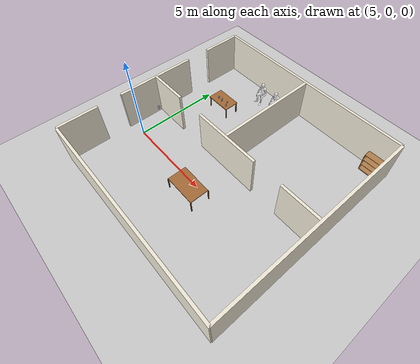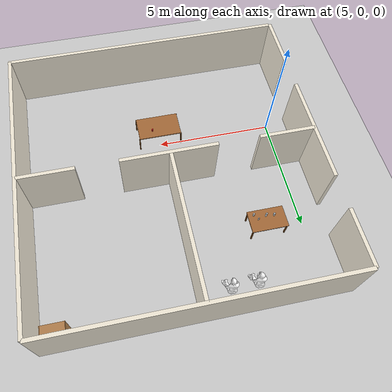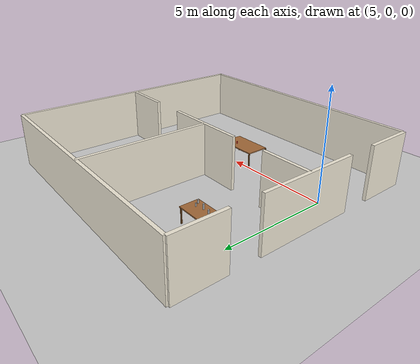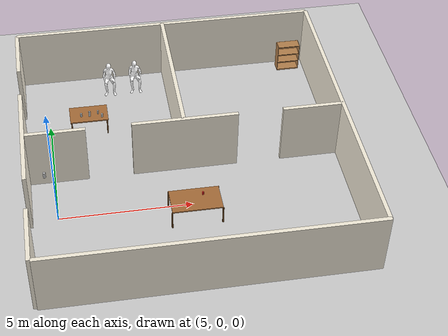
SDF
<sdf version="1.7">
 <world name="house">
  <plugin name="grasp_assist" filename="libgrasp_assist.so">
   <robot>tiago</robot>
   <finger_joint>gripper_left_finger_joint</finger_joint>
   <finger_joint>gripper_right_finger_joint</finger_joint>
   <max_mass>2.0</max_mass>
  </plugin>
  <light name="sun" type="directional">
   <pose>0 0 10 0 -0 0</pose>
   <diffuse>0.8 0.8 0.8 1</diffuse>
   <specular>0.2 0.2 0.2 1</specular>
   <attenuation>
    <range>1000</range>
    <constant>0.9</constant>
    <linear>0.01</linear>
    <quadratic>0.001</quadratic>
   </attenuation>
   <direction>-0.5 0.1 -0.9</direction>
   <spot><inner_angle>0</inner_angle><outer_angle>0</outer_angle><falloff>0</falloff></spot>
  </light>
  <gravity>0 0 -9.81</gravity>
  <physics type="ode">
   <max_step_size>0.001</max_step_size>
   <real_time_factor>1</real_time_factor>
   <real_time_update_rate>1000</real_time_update_rate>
  </physics>
  <model name="ground_plane">
   <static>1</static>
   <link name="link">
    <collision name="collision">
     <geometry><plane><normal>0 0 1</normal><size>100 100</size></plane></geometry>
     <surface><friction><ode><mu>100</mu><mu2>50</mu2></ode></friction></surface>
    </collision>
    <visual name="visual">
     <cast_shadows>0</cast_shadows>
     <geometry><plane><normal>0 0 1</normal><size>100 100</size></plane></geometry>
     <material>
      <script><uri>file://media/materials/scripts/gazebo.material</uri><name>Gazebo/Grey</name></script>
     </material>
    </visual>
   </link>
  </model>
  <model name="wall_north">
   <static>1</static>
   <pose>10 8 1.25 0 -0 0</pose>
   <link name="link">
    <collision name="c"><geometry><box><size>12 0.15 2.5</size></box></geometry></collision>
    <visual name="v">
     <geometry><box><size>12 0.15 2.5</size></box></geometry>
     <material><ambient>0.95 0.92 0.85 1</ambient><diffuse>0.95 0.92 0.85 1</diffuse></material>
    </visual>
   </link>
  </model>
  <model name="wall_south">
   <static>1</static>
   <pose>10.0572 -3.98547 1.25 0 -0 0</pose>
   <link name="link">
    <collision name="c"><geometry><box><size>12 0.15 2.5</size></box></geometry></collision>
    <visual name="v">
     <geometry><box><size>12 0.15 2.5</size></box></geometry>
     <material><ambient>0.95 0.92 0.85 1</ambient><diffuse>0.95 0.92 0.85 1</diffuse></material>
    </visual>
   </link>
  </model>
  <model name="wall_east">
   <static>1</static>
   <pose>16 2 1.25 0 -0 0</pose>
   <link name="link">
    <collision name="c"><geometry><box><size>0.15 12 2.5</size></box></geometry></collision>
    <visual name="v">
     <geometry><box><size>0.15 12 2.5</size></box></geometry>
     <material><ambient>0.95 0.92 0.85 1</ambient><diffuse>0.95 0.92 0.85 1</diffuse></material>
    </visual>
   </link>
  </model>
  <model name="wall_west_s">
   <static>1</static>
   <pose>4 -2.85 1.25 0 -0 0</pose>
   <link name="link">
    <collision name="c"><geometry><box><size>0.15 2.3 2.5</size></box></geometry></collision>
    <visual name="v">
     <geometry><box><size>0.15 2.3 2.5</size></box></geometry>
     <material><ambient>0.95 0.92 0.85 1</ambient><diffuse>0.95 0.92 0.85 1</diffuse></material>
    </visual>
   </link>
  </model>
  <model name="wall_west_m">
   <static>1</static>
   <pose>4 2 1.25 0 -0 0</pose>
   <link name="link">
    <collision name="c"><geometry><box><size>0.15 4.6 2.5</size></box></geometry></collision>
    <visual name="v">
     <geometry><box><size>0.15 4.6 2.5</size></box></geometry>
     <material><ambient>0.95 0.92 0.85 1</ambient><diffuse>0.95 0.92 0.85 1</diffuse></material>
    </visual>
   </link>
  </model>
  <model name="wall_west_n">
   <static>1</static>
   <pose>4 6.85 1.25 0 -0 0</pose>
   <link name="link">
    <collision name="c"><geometry><box><size>0.15 2.3 2.5</size></box></geometry></collision>
    <visual name="v">
     <geometry><box><size>0.15 2.3 2.5</size></box></geometry>
     <material><ambient>0.95 0.92 0.85 1</ambient><diffuse>0.95 0.92 0.85 1</diffuse></material>
    </visual>
   </link>
  </model>
  <model name="wall_h_1">
   <static>1</static>
   <pose>5.15 2 1.25 0 -0 0</pose>
   <link name="link">
    <collision name="c"><geometry><box><size>2.3 0.15 2.5</size></box></geometry></collision>
    <visual name="v">
     <geometry><box><size>2.3 0.15 2.5</size></box></geometry>
     <material><ambient>0.95 0.92 0.85 1</ambient><diffuse>0.95 0.92 0.85 1</diffuse></material>
    </visual>
   </link>
  </model>
  <model name="wall_h_2">
   <static>1</static>
   <pose>10 2 1.25 0 -0 0</pose>
   <link name="link">
    <collision name="c"><geometry><box><size>4 0.15 2.5</size></box></geometry></collision>
    <visual name="v">
     <geometry><box><size>4 0.15 2.5</size></box></geometry>
     <material><ambient>0.95 0.92 0.85 1</ambient><diffuse>0.95 0.92 0.85 1</diffuse></material>
    </visual>
   </link>
  </model>
  <model name="wall_h_3">
   <static>1</static>
   <pose>14.85 2 1.25 0 -0 0</pose>
   <link name="link">
    <collision name="c"><geometry><box><size>2.3 0.15 2.5</size></box></geometry></collision>
    <visual name="v">
     <geometry><box><size>2.3 0.15 2.5</size></box></geometry>
     <material><ambient>0.95 0.92 0.85 1</ambient><diffuse>0.95 0.92 0.85 1</diffuse></material>
    </visual>
   </link>
  </model>
  <model name="wall_v">
   <static>1</static>
   <pose>9.94348 5.02498 1.25 0 -0 0</pose>
   <link name="link">
    <collision name="c"><geometry><box><size>0.15 6 2.5</size></box></geometry></collision>
    <visual name="v">
     <geometry><box><size>0.15 6 2.5</size></box></geometry>
     <material><ambient>0.95 0.92 0.85 1</ambient><diffuse>0.95 0.92 0.85 1</diffuse></material>
    </visual>
   </link>
  </model>
  <model name="coffee_table">
   <static>1</static>
   <pose>10 -0.5 0 0 -0 0</pose>
   <link name="link">
    <visual name="top">
     <pose>0 0 0.76 0 -0 0</pose>
     <geometry><box><size>1.86 1.08 0.05</size></box></geometry>
     <material><ambient>0.55 0.35 0.18 1</ambient><diffuse>0.65 0.42 0.22 1</diffuse></material>
    </visual>
    <collision name="top_c">
     <pose>0 0 0.76 0 -0 0</pose>
     <geometry><box><size>1.86 1.08 0.05</size></box></geometry>
    </collision>
    <visual name="leg1">
     <pose>-0.93 -0.54 0.375 0 -0 0</pose>
     <geometry><box><size>0.05 0.05 0.75</size></box></geometry>
     <material><ambient>0.4 0.25 0.1 1</ambient><diffuse>0.4 0.25 0.1 1</diffuse></material>
    </visual>
    <collision name="leg1_c">
     <pose>-0.93 -0.54 0.375 0 -0 0</pose>
     <geometry><box><size>0.05 0.05 0.75</size></box></geometry>
    </collision>
    <visual name="leg2">
     <pose>0.93 -0.54 0.375 0 -0 0</pose>
     <geometry><box><size>0.05 0.05 0.75</size></box></geometry>
     <material><ambient>0.4 0.25 0.1 1</ambient><diffuse>0.4 0.25 0.1 1</diffuse></material>
    </visual>
    <collision name="leg2_c">
     <pose>0.93 -0.54 0.375 0 -0 0</pose>
     <geometry><box><size>0.05 0.05 0.75</size></box></geometry>
    </collision>
    <visual name="leg3">
     <pose>-0.93 0.54 0.375 0 -0 0</pose>
     <geometry><box><size>0.05 0.05 0.75</size></box></geometry>
     <material><ambient>0.4 0.25 0.1 1</ambient><diffuse>0.4 0.25 0.1 1</diffuse></material>
    </visual>
    <collision name="leg3_c">
     <pose>-0.93 0.54 0.375 0 -0 0</pose>
     <geometry><box><size>0.05 0.05 0.75</size></box></geometry>
    </collision>
    <visual name="leg4">
     <pose>0.93 0.54 0.375 0 -0 0</pose>
     <geometry><box><size>0.05 0.05 0.75</size></box></geometry>
     <material><ambient>0.4 0.25 0.1 1</ambient><diffuse>0.4 0.25 0.1 1</diffuse></material>
    </visual>
    <collision name="leg4_c">
     <pose>0.93 0.54 0.375 0 -0 0</pose>
     <geometry><box><size>0.05 0.05 0.75</size></box></geometry>
    </collision>
    <inertial>
     <mass>15</mass>
     <inertia><ixx>1</ixx><ixy>0</ixy><ixz>0</ixz><iyy>1</iyy><iyz>0</iyz><izz>1</izz></inertia>
    </inertial>
   </link>
  </model>
  <model name="coke_living">
   <static>0</static>
   <pose>10.3 -0.299894 0.844991 2.5e-05 8e-06 -0.002546</pose>
   <link name="link">
    <inertial>
     <mass>0.39</mass>
     <inertia><ixx>0.001</ixx><iyy>0.001</iyy><izz>0.0005</izz><ixy>0</ixy><ixz>0</ixz><iyz>0</iyz></inertia>
    </inertial>
    <collision name="c">
     <geometry><cylinder><radius>0.033</radius><length>0.12</length></cylinder></geometry>
    </collision>
    <visual name="v">
     <geometry><cylinder><radius>0.033</radius><length>0.12</length></cylinder></geometry>
     <material><ambient>0.8 0.1 0.1 1</ambient><diffuse>0.8 0.1 0.1 1</diffuse></material>
    </visual>
   </link>
  </model>
  <model name="kitchen_table">
   <static>1</static>
   <pose>6.54806 4.82279 0 0 -0 0</pose>
   <link name="base_link">
    <visual name="top">
     <pose>0 0 0.725 0 -0 0</pose>
     <geometry><box><size>1.5 0.9 0.05</size></box></geometry>
     <material><ambient>0.55 0.35 0.18 1</ambient><diffuse>0.65 0.42 0.22 1</diffuse></material>
    </visual>
    <collision name="top_c">
     <pose>0 0 0.725 0 -0 0</pose>
     <geometry><box><size>1.5 0.9 0.05</size></box></geometry>
    </collision>
    <visual name="leg1">
     <pose>-0.7 -0.4 0.35 0 -0 0</pose>
     <geometry><box><size>0.05 0.05 0.7</size></box></geometry>
     <material><ambient>0.4 0.25 0.1 1</ambient><diffuse>0.4 0.25 0.1 1</diffuse></material>
    </visual>
    <collision name="leg1_c">
     <pose>-0.7 -0.4 0.35 0 -0 0</pose>
     <geometry><box><size>0.05 0.05 0.7</size></box></geometry>
    </collision>
    <visual name="leg2">
     <pose>0.7 -0.4 0.35 0 -0 0</pose>
     <geometry><box><size>0.05 0.05 0.7</size></box></geometry>
     <material><ambient>0.4 0.25 0.1 1</ambient><diffuse>0.4 0.25 0.1 1</diffuse></material>
    </visual>
    <collision name="leg2_c">
     <pose>0.7 -0.4 0.35 0 -0 0</pose>
     <geometry><box><size>0.05 0.05 0.7</size></box></geometry>
    </collision>
    <visual name="leg3">
     <pose>-0.7 0.4 0.35 0 -0 0</pose>
     <geometry><box><size>0.05 0.05 0.7</size></box></geometry>
     <material><ambient>0.4 0.25 0.1 1</ambient><diffuse>0.4 0.25 0.1 1</diffuse></material>
    </visual>
    <collision name="leg3_c">
     <pose>-0.7 0.4 0.35 0 -0 0</pose>
     <geometry><box><size>0.05 0.05 0.7</size></box></geometry>
    </collision>
    <visual name="leg4">
     <pose>0.7 0.4 0.35 0 -0 0</pose>
     <geometry><box><size>0.05 0.05 0.7</size></box></geometry>
     <material><ambient>0.4 0.25 0.1 1</ambient><diffuse>0.4 0.25 0.1 1</diffuse></material>
    </visual>
    <collision name="leg4_c">
     <pose>0.7 0.4 0.35 0 -0 0</pose>
     <geometry><box><size>0.05 0.05 0.7</size></box></geometry>
    </collision>
    <inertial>
     <mass>20</mass>
     <inertia><ixx>1</ixx><ixy>0</ixy><ixz>0</ixz><iyy>1</iyy><iyz>0</iyz><izz>1</izz></inertia>
    </inertial>
   </link>
  </model>
  <magnetic_field>6e-06 2.3e-05 -4.2e-05</magnetic_field>
  <atmosphere type="adiabatic"/>
  <scene><ambient>0.4 0.4 0.4 1</ambient><background>0.7 0.7 0.7 1</background><shadows>1</shadows></scene>
  <audio><device>default</device></audio>
  <spherical_coordinates>
   <surface_model>EARTH_WGS84</surface_model>
   <latitude_deg>0</latitude_deg>
   <longitude_deg>0</longitude_deg>
   <elevation>0</elevation>
   <heading_deg>0</heading_deg>
  </spherical_coordinates>
  <model name="biscuits_pack">
   <static>0</static>
   <link name="link">
    <inertial>
     <mass>0.25</mass>
     <inertia><ixx>0.0005</ixx><ixy>0</ixy><ixz>0</ixz><iyy>0.0005</iyy><iyz>0</iyz><izz>0.0002</izz></inertia>
    </inertial>
    <collision name="collision">
     <geometry><cylinder><radius>0.029</radius><length>0.15</length></cylinder></geometry>
    </collision>
    <visual name="visual">
     <geometry><cylinder><radius>0.029</radius><length>0.15</length></cylinder></geometry>
     <material>
      <script>
       <uri>model://biscuits_pack/material/scripts</uri>
       <uri>model://biscuits_pack/material/textures</uri>
       <name>Custom/biscuits_pack</name>
      </script>
     </material>
    </visual>
    <velocity_decay><linear>0</linear><angular>0</angular></velocity_decay>
   </link>
   <pose>6.91941 4.78203 0.825 -7e-06 -5e-06 0.000144</pose>
  </model>
  <model name="cocacola">
   <static>0</static>
   <link name="link">
    <inertial>
     <mass>0.25</mass>
     <inertia><ixx>0.0005</ixx><ixy>0</ixy><ixz>0</ixz><iyy>0.0005</iyy><iyz>0</iyz><izz>0.0002</izz></inertia>
    </inertial>
    <collision name="collision">
     <pose>0 0 0.075 -3.14159 -0 0</pose>
     <geometry><cylinder><radius>0.04</radius><length>0.15</length></cylinder></geometry>
    </collision>
    <visual name="visual">
     <pose>0 0 0.075 -3.14159 -0 0</pose>
     <geometry><cylinder><radius>0.04</radius><length>0.15</length></cylinder></geometry>
     <material>
      <script>
       <uri>model://cocacola/material/scripts</uri>
       <uri>model://cocacola/material/textures</uri>
       <name>Custom/cocacola</name>
      </script>
     </material>
    </visual>
    <velocity_decay><linear>0</linear><angular>0</angular></velocity_decay>
   </link>
   <pose>6.25036 4.70846 0.749996 3.7e-05 0.00013 -8e-06</pose>
  </model>
  <model name="pringles2">
   <static>0</static>
   <link name="link">
    <inertial>
     <mass>0.25</mass>
     <inertia><ixx>0.00125</ixx><ixy>0</ixy><ixz>0</ixz><iyy>0.00125</iyy><iyz>0</iyz><izz>0.0002</izz></inertia>
    </inertial>
    <collision name="collision">
     <pose>0 0 0.12 -3.14159 -0 0</pose>
     <geometry><cylinder><radius>0.04</radius><length>0.235</length></cylinder></geometry>
    </collision>
    <visual name="visual">
     <pose>0 0 0.12 -3.14159 -0 0</pose>
     <geometry><cylinder><radius>0.04</radius><length>0.235</length></cylinder></geometry>
     <material>
      <script>
       <uri>model://pringles2/material/scripts</uri>
       <uri>model://pringles2/material/textures</uri>
       <name>Custom/pringles2</name>
      </script>
     </material>
    </visual>
    <velocity_decay><linear>0</linear><angular>0</angular></velocity_decay>
   </link>
   <pose>6.57785 4.68004 0.747493 -5.2e-05 -3e-05 -0.000139</pose>
  </model>
  <model name="sprite">
   <static>0</static>
   <link name="link">
    <inertial>
     <mass>0.25</mass>
     <inertia><ixx>0.0005</ixx><ixy>0</ixy><ixz>0</ixz><iyy>0.0005</iyy><iyz>0</iyz><izz>0.0002</izz></inertia>
    </inertial>
    <collision name="collision">
     <pose>0 0 0.075 -3.14159 -0 0</pose>
     <geometry><cylinder><radius>0.04</radius><length>0.15</length></cylinder></geometry>
    </collision>
    <visual name="visual">
     <pose>0 0 0.075 -3.14159 -0 0</pose>
     <geometry><cylinder><radius>0.04</radius><length>0.15</length></cylinder></geometry>
     <material>
      <script>
       <uri>model://sprite/material/scripts</uri>
       <uri>model://sprite/material/textures</uri>
       <name>Custom/sprite</name>
      </script>
     </material>
    </visual>
    <velocity_decay><linear>0</linear><angular>0</angular></velocity_decay>
   </link>
   <pose>7.06164 4.56561 0.749995 -0.000122 3.3e-05 -1.6e-05</pose>
  </model>
  <model name="beer">
   <link name="link">
    <pose>0 0 0.115 0 -0 0</pose>
    <inertial>
     <mass>0.39</mass>
     <inertia><ixx>0.00058</ixx><ixy>0</ixy><ixz>0</ixz><iyy>0.00058</iyy><iyz>0</iyz><izz>0.00019</izz></inertia>
    </inertial>
    <collision name="collision">
     <geometry><cylinder><radius>0.055</radius><length>0.23</length></cylinder></geometry>
    </collision>
    <visual name="visual">
     <geometry><cylinder><radius>0.055</radius><length>0.23</length></cylinder></geometry>
     <material>
      <script>
       <uri>https://fuel.ignitionrobotics.org/1.0/openrobotics/models/beer/3/files/materials/scripts</uri>
       <uri>https://fuel.ignitionrobotics.org/1.0/openrobotics/models/beer/3/files/materials/textures</uri>
       <name>Beer/Diffuse</name>
      </script>
     </material>
    </visual>
   </link>
   <pose>4.63821 1.46812 0.770001 -1.1e-05 -5e-06 -0.013518</pose>
  </model>
  <model name="Bookshelf">
   <static>1</static>
   <link name="link">
    <inertial>
     <mass>1</mass>
     <inertia><ixx>0.1</ixx><iyy>0.1</iyy><izz>0.1</izz><ixy>0</ixy><ixz>0</ixz><iyz>0</iyz></inertia>
    </inertial>
    <collision name="back">
     <pose>0 0.005 0.6 0 -0 0</pose>
     <geometry><box><size>0.9 0.01 1.2</size></box></geometry>
    </collision>
    <visual name="visual1">
     <pose>0 0.005 0.6 0 -0 0</pose>
     <geometry><box><size>0.9 0.01 1.2</size></box></geometry>
     <material>
      <diffuse>1 1 1 1</diffuse>
      <script><uri>file://media/materials/scripts/gazebo.material</uri><name>Gazebo/Wood</name></script>
      <pbr>
       <metal>
        <albedo_map>https://fuel.ignitionrobotics.org/1.0/openrobotics/models/bookshelf/4/files/bookshelf_diffuse.jpg</albedo_map>
       </metal>
      </pbr>
     </material>
    </visual>
    <collision name="left_side">
     <pose>0.45 -0.195 0.6 0 -0 0</pose>
     <geometry><box><size>0.02 0.4 1.2</size></box></geometry>
    </collision>
    <visual name="visual2">
     <pose>0.45 -0.195 0.6 0 -0 0</pose>
     <geometry><box><size>0.02 0.4 1.2</size></box></geometry>
     <material>
      <diffuse>1 1 1 1</diffuse>
      <script><uri>file://media/materials/scripts/gazebo.material</uri><name>Gazebo/Wood</name></script>
      <pbr>
       <metal>
        <albedo_map>https://fuel.ignitionrobotics.org/1.0/openrobotics/models/bookshelf/4/files/bookshelf_diffuse.jpg</albedo_map>
       </metal>
      </pbr>
     </material>
    </visual>
    <collision name="right_side">
     <pose>-0.45 -0.195 0.6 0 -0 0</pose>
     <geometry><box><size>0.02 0.4 1.2</size></box></geometry>
    </collision>
    <visual name="visual3">
     <pose>-0.45 -0.195 0.6 0 -0 0</pose>
     <geometry><box><size>0.02 0.4 1.2</size></box></geometry>
     <material>
      <diffuse>1 1 1 1</diffuse>
      <script><uri>file://media/materials/scripts/gazebo.material</uri><name>Gazebo/Wood</name></script>
      <pbr>
       <metal>
        <albedo_map>https://fuel.ignitionrobotics.org/1.0/openrobotics/models/bookshelf/4/files/bookshelf_diffuse.jpg</albedo_map>
       </metal>
      </pbr>
     </material>
    </visual>
    <collision name="bottom">
     <pose>0 -0.195 0.03 0 -0 0</pose>
     <geometry><box><size>0.88 0.4 0.06</size></box></geometry>
    </collision>
    <visual name="visual4">
     <pose>0 -0.195 0.03 0 -0 0</pose>
     <geometry><box><size>0.88 0.4 0.06</size></box></geometry>
     <material>
      <diffuse>1 1 1 1</diffuse>
      <script><uri>file://media/materials/scripts/gazebo.material</uri><name>Gazebo/Wood</name></script>
      <pbr>
       <metal>
        <albedo_map>https://fuel.ignitionrobotics.org/1.0/openrobotics/models/bookshelf/4/files/bookshelf_diffuse.jpg</albedo_map>
       </metal>
      </pbr>
     </material>
    </visual>
    <collision name="top">
     <pose>0 -0.195 1.19 0 -0 0</pose>
     <geometry><box><size>0.88 0.4 0.02</size></box></geometry>
    </collision>
    <visual name="visual5">
     <pose>0 -0.195 1.19 0 -0 0</pose>
     <geometry><box><size>0.88 0.4 0.02</size></box></geometry>
     <material>
      <diffuse>1 1 1 1</diffuse>
      <script><uri>file://media/materials/scripts/gazebo.material</uri><name>Gazebo/Wood</name></script>
      <pbr>
       <metal>
        <albedo_map>https://fuel.ignitionrobotics.org/1.0/openrobotics/models/bookshelf/4/files/bookshelf_diffuse.jpg</albedo_map>
       </metal>
      </pbr>
     </material>
    </visual>
    <collision name="low_shelf">
     <pose>0 -0.195 0.43 0 -0 0</pose>
     <geometry><box><size>0.88 0.4 0.02</size></box></geometry>
    </collision>
    <visual name="visual6">
     <pose>0 -0.195 0.43 0 -0 0</pose>
     <geometry><box><size>0.88 0.4 0.02</size></box></geometry>
     <material>
      <diffuse>1 1 1 1</diffuse>
      <script><uri>file://media/materials/scripts/gazebo.material</uri><name>Gazebo/Wood</name></script>
      <pbr>
       <metal>
        <albedo_map>https://fuel.ignitionrobotics.org/1.0/openrobotics/models/bookshelf/4/files/bookshelf_diffuse.jpg</albedo_map>
       </metal>
      </pbr>
     </material>
    </visual>
    <collision name="high_shelf">
     <pose>0 -0.195 0.8 0 -0 0</pose>
     <geometry><box><size>0.88 0.4 0.02</size></box></geometry>
    </collision>
    <visual name="visual7">
     <pose>0 -0.195 0.8 0 -0 0</pose>
     <geometry><box><size>0.88 0.4 0.02</size></box></geometry>
     <material>
      <diffuse>1 1 1 1</diffuse>
      <script><uri>file://media/materials/scripts/gazebo.material</uri><name>Gazebo/Wood</name></script>
      <pbr>
       <metal>
        <albedo_map>https://fuel.ignitionrobotics.org/1.0/openrobotics/models/bookshelf/4/files/bookshelf_diffuse.jpg</albedo_map>
       </metal>
      </pbr>
     </material>
    </visual>
   </link>
   <pose>15.2486 7.70518 0 0 -0 0</pose>
  </model>
  <model name="sitting">
   <static>1</static>
   <link name="link">
    <collision name="collision">
     <geometry><box><size>0.6 0.6 1.2</size></box></geometry>
     <pose>0 0 0.6 0 -0 0</pose>
    </collision>
    <visual name="visual">
     <geometry><mesh><uri>model://sitting/meshes/sitting.dae</uri><scale>0.01 0.01 0.01</scale></mesh></geometry>
     <material>
      <diffuse>1 1 1 1</diffuse>
      <specular>0.2 0.2 0.2 1</specular>
      <pbr><metal><albedo_map>model://sitting/meshes/Ch21_1001_Diffuse.png</albedo_map></metal></pbr>
     </material>
    </visual>
    <inertial>
     <mass>70</mass>
     <inertia><ixx>1</ixx><ixy>0</ixy><ixz>0</ixz><iyy>1</iyy><iyz>0</iyz><izz>1</izz></inertia>
    </inertial>
   </link>
   <pose>7.57332 7.2816 0 1.56937 -0.004089 0.001276</pose>
  </model>
  <model name="sitting_clone">
   <static>1</static>
   <link name="link">
    <collision name="collision">
     <geometry><box><size>0.6 0.6 1.2</size></box></geometry>
     <pose>0 0 0.6 0 -0 0</pose>
    </collision>
    <visual name="visual">
     <geometry><mesh><uri>model://sitting/meshes/sitting.dae</uri><scale>0.01 0.01 0.01</scale></mesh></geometry>
     <material>
      <diffuse>1 1 1 1</diffuse>
      <specular>0.2 0.2 0.2 1</specular>
      <pbr><metal><albedo_map>model://sitting/meshes/Ch21_1001_Diffuse.png</albedo_map></metal></pbr>
     </material>
    </visual>
    <inertial>
     <mass>70</mass>
     <inertia><ixx>1</ixx><ixy>0</ixy><ixz>0</ixz><iyy>1</iyy><iyz>0</iyz><izz>1</izz></inertia>
    </inertial>
   </link>
   <pose>8.64497 7.2985 3.2e-05 1.56937 -0.004089 0.001276</pose>
  </model>
 </world>
</sdf>
